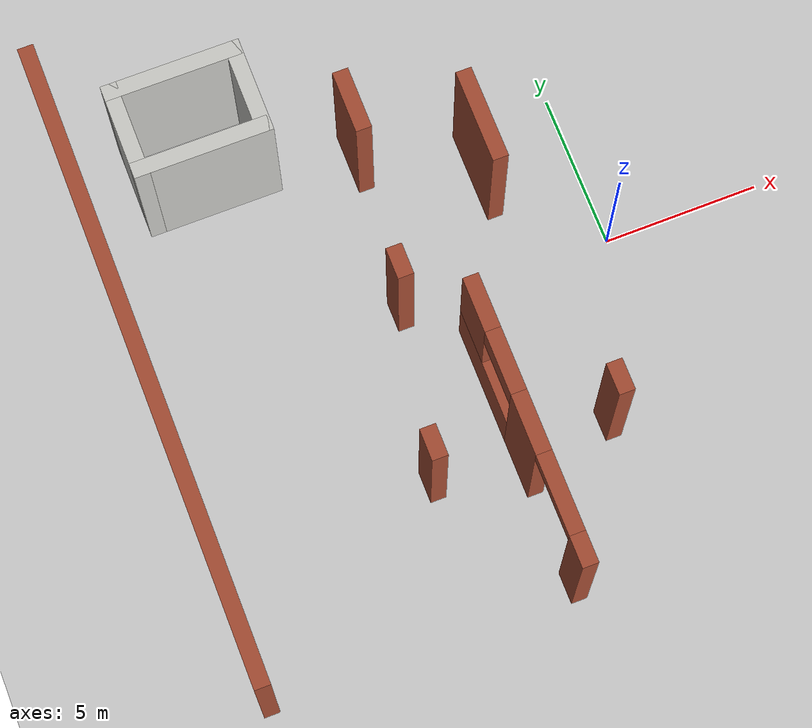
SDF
<sdf version="1.6">
 <world name="default">
  <model name="ground_plane">
   <static>1</static>
   <link name="link">
    <collision name="collision">
     <geometry><plane><normal>0 0 1</normal><size>40 40</size></plane></geometry>
     <surface><friction><ode><mu>100</mu><mu2>50</mu2></ode></friction></surface>
    </collision>
    <visual name="visual">
     <cast_shadows>0</cast_shadows>
     <geometry><plane><normal>0 0 1</normal><size>40 40</size></plane></geometry>
     <material>
      <script><uri>file://media/materials/scripts/gazebo.material</uri><name>Gazebo/Grey</name></script>
     </material>
    </visual>
   </link>
  </model>
  <model name="indoor6">
   <link name="Wall_0">
    <pose>-14.8293 0.123091 0 0 -0 1.5708</pose>
    <visual name="Wall_0_Visual">
     <pose>0 0 2.5 0 -0 0</pose>
     <geometry><box><size>20.5 0.5 5</size></box></geometry>
     <material>
      <script><uri>file://media/materials/scripts/gazebo.material</uri><name>Gazebo/Bricks</name></script>
      <ambient>1 1 1 1</ambient>
      <shader type="pixel"/>
     </material>
     <meta><layer>0</layer></meta>
    </visual>
    <collision name="Wall_0_Collision">
     <pose>0 0 2.5 0 -0 0</pose>
     <geometry><box><size>20.5 0.5 5</size></box></geometry>
     <surface>
      <friction>
       <ode><mu>1</mu><mu2>1</mu2><fdir1>0 0 0</fdir1><slip1>0</slip1><slip2>0</slip2></ode>
       <torsional>
        <coefficient>1</coefficient>
        <patch_radius>0</patch_radius>
        <surface_radius>0</surface_radius>
        <use_patch_radius>1</use_patch_radius>
        <ode><slip>0</slip></ode>
       </torsional>
      </friction>
      <bounce><restitution_coefficient>0</restitution_coefficient><threshold>1e+06</threshold></bounce>
      <contact>
       <collide_without_contact>0</collide_without_contact>
       <collide_without_contact_bitmask>1</collide_without_contact_bitmask>
       <collide_bitmask>1</collide_bitmask>
       <ode>
        <soft_cfm>0</soft_cfm>
        <soft_erp>0.2</soft_erp>
        <kp>1e+13</kp>
        <kd>1</kd>
        <max_vel>0.01</max_vel>
        <min_depth>0</min_depth>
       </ode>
       <bullet>
        <split_impulse>1</split_impulse>
        <split_impulse_penetration_threshold>-0.01</split_impulse_penetration_threshold>
        <soft_cfm>0</soft_cfm>
        <soft_erp>0.2</soft_erp>
        <kp>1e+13</kp>
        <kd>1</kd>
       </bullet>
      </contact>
     </surface>
    </collision>
   </link>
   <link name="Wall_12">
    <pose>-11.01 8.1 0 0 -0 0</pose>
    <visual name="Wall_12_Visual">
     <pose>0 0 2.5 0 -0 0</pose>
     <geometry><box><size>4.35044 0.5 5</size></box></geometry>
     <material>
      <script><uri>file://media/materials/scripts/gazebo.material</uri><name>Gazebo/CeilingTiled</name></script>
      <ambient>1 1 1 1</ambient>
      <shader type="pixel"/>
     </material>
     <meta><layer>0</layer></meta>
    </visual>
    <collision name="Wall_12_Collision">
     <pose>0 0 2.5 0 -0 0</pose>
     <geometry><box><size>4.35044 0.5 5</size></box></geometry>
     <surface>
      <friction>
       <ode><mu>1</mu><mu2>1</mu2><fdir1>0 0 0</fdir1><slip1>0</slip1><slip2>0</slip2></ode>
       <torsional>
        <coefficient>1</coefficient>
        <patch_radius>0</patch_radius>
        <surface_radius>0</surface_radius>
        <use_patch_radius>1</use_patch_radius>
        <ode><slip>0</slip></ode>
       </torsional>
      </friction>
      <bounce><restitution_coefficient>0</restitution_coefficient><threshold>1e+06</threshold></bounce>
      <contact>
       <collide_without_contact>0</collide_without_contact>
       <collide_without_contact_bitmask>1</collide_without_contact_bitmask>
       <collide_bitmask>1</collide_bitmask>
       <ode>
        <soft_cfm>0</soft_cfm>
        <soft_erp>0.2</soft_erp>
        <kp>1e+13</kp>
        <kd>1</kd>
        <max_vel>0.01</max_vel>
        <min_depth>0</min_depth>
       </ode>
       <bullet>
        <split_impulse>1</split_impulse>
        <split_impulse_penetration_threshold>-0.01</split_impulse_penetration_threshold>
        <soft_cfm>0</soft_cfm>
        <soft_erp>0.2</soft_erp>
        <kp>1e+13</kp>
        <kd>1</kd>
       </bullet>
      </contact>
     </surface>
    </collision>
   </link>
   <link name="Wall_13">
    <pose>-9.085 6.8 0 0 0 -1.5708</pose>
    <visual name="Wall_13_Visual">
     <pose>0 0 2.5 0 -0 0</pose>
     <geometry><box><size>3.1 0.5 5</size></box></geometry>
     <material>
      <script><uri>file://media/materials/scripts/gazebo.material</uri><name>Gazebo/CeilingTiled</name></script>
      <ambient>1 1 1 1</ambient>
      <shader type="pixel"/>
     </material>
     <meta><layer>0</layer></meta>
    </visual>
    <collision name="Wall_13_Collision">
     <pose>0 0 2.5 0 -0 0</pose>
     <geometry><box><size>3.1 0.5 5</size></box></geometry>
     <surface>
      <friction>
       <ode><mu>1</mu><mu2>1</mu2><fdir1>0 0 0</fdir1><slip1>0</slip1><slip2>0</slip2></ode>
       <torsional>
        <coefficient>1</coefficient>
        <patch_radius>0</patch_radius>
        <surface_radius>0</surface_radius>
        <use_patch_radius>1</use_patch_radius>
        <ode><slip>0</slip></ode>
       </torsional>
      </friction>
      <bounce><restitution_coefficient>0</restitution_coefficient><threshold>1e+06</threshold></bounce>
      <contact>
       <collide_without_contact>0</collide_without_contact>
       <collide_without_contact_bitmask>1</collide_without_contact_bitmask>
       <collide_bitmask>1</collide_bitmask>
       <ode>
        <soft_cfm>0</soft_cfm>
        <soft_erp>0.2</soft_erp>
        <kp>1e+13</kp>
        <kd>1</kd>
        <max_vel>0.01</max_vel>
        <min_depth>0</min_depth>
       </ode>
       <bullet>
        <split_impulse>1</split_impulse>
        <split_impulse_penetration_threshold>-0.01</split_impulse_penetration_threshold>
        <soft_cfm>0</soft_cfm>
        <soft_erp>0.2</soft_erp>
        <kp>1e+13</kp>
        <kd>1</kd>
       </bullet>
      </contact>
     </surface>
    </collision>
   </link>
   <link name="Wall_14">
    <pose>-11.01 5.5 0 0 -0 3.14159</pose>
    <visual name="Wall_14_Visual">
     <pose>0 0 2.5 0 -0 0</pose>
     <geometry><box><size>4.35 0.5 5</size></box></geometry>
     <material>
      <script><uri>file://media/materials/scripts/gazebo.material</uri><name>Gazebo/CeilingTiled</name></script>
      <ambient>1 1 1 1</ambient>
      <shader type="pixel"/>
     </material>
     <meta><layer>0</layer></meta>
    </visual>
    <collision name="Wall_14_Collision">
     <pose>0 0 2.5 0 -0 0</pose>
     <geometry><box><size>4.35 0.5 5</size></box></geometry>
     <surface>
      <friction>
       <ode><mu>1</mu><mu2>1</mu2><fdir1>0 0 0</fdir1><slip1>0</slip1><slip2>0</slip2></ode>
       <torsional>
        <coefficient>1</coefficient>
        <patch_radius>0</patch_radius>
        <surface_radius>0</surface_radius>
        <use_patch_radius>1</use_patch_radius>
        <ode><slip>0</slip></ode>
       </torsional>
      </friction>
      <bounce><restitution_coefficient>0</restitution_coefficient><threshold>1e+06</threshold></bounce>
      <contact>
       <collide_without_contact>0</collide_without_contact>
       <collide_without_contact_bitmask>1</collide_without_contact_bitmask>
       <collide_bitmask>1</collide_bitmask>
       <ode>
        <soft_cfm>0</soft_cfm>
        <soft_erp>0.2</soft_erp>
        <kp>1e+13</kp>
        <kd>1</kd>
        <max_vel>0.01</max_vel>
        <min_depth>0</min_depth>
       </ode>
       <bullet>
        <split_impulse>1</split_impulse>
        <split_impulse_penetration_threshold>-0.01</split_impulse_penetration_threshold>
        <soft_cfm>0</soft_cfm>
        <soft_erp>0.2</soft_erp>
        <kp>1e+13</kp>
        <kd>1</kd>
       </bullet>
      </contact>
     </surface>
    </collision>
   </link>
   <link name="Wall_15">
    <pose>-12.935 6.8 0 0 -0 1.5708</pose>
    <visual name="Wall_15_Visual">
     <pose>0 0 2.5 0 -0 0</pose>
     <geometry><box><size>3.1 0.5 5</size></box></geometry>
     <material>
      <script><uri>file://media/materials/scripts/gazebo.material</uri><name>Gazebo/CeilingTiled</name></script>
      <ambient>1 1 1 1</ambient>
      <shader type="pixel"/>
     </material>
     <meta><layer>0</layer></meta>
    </visual>
    <collision name="Wall_15_Collision">
     <pose>0 0 2.5 0 -0 0</pose>
     <geometry><box><size>3.1 0.5 5</size></box></geometry>
     <surface>
      <friction>
       <ode><mu>1</mu><mu2>1</mu2><fdir1>0 0 0</fdir1><slip1>0</slip1><slip2>0</slip2></ode>
       <torsional>
        <coefficient>1</coefficient>
        <patch_radius>0</patch_radius>
        <surface_radius>0</surface_radius>
        <use_patch_radius>1</use_patch_radius>
        <ode><slip>0</slip></ode>
       </torsional>
      </friction>
      <bounce><restitution_coefficient>0</restitution_coefficient><threshold>1e+06</threshold></bounce>
      <contact>
       <collide_without_contact>0</collide_without_contact>
       <collide_without_contact_bitmask>1</collide_without_contact_bitmask>
       <collide_bitmask>1</collide_bitmask>
       <ode>
        <soft_cfm>0</soft_cfm>
        <soft_erp>0.2</soft_erp>
        <kp>1e+13</kp>
        <kd>1</kd>
        <max_vel>0.01</max_vel>
        <min_depth>0</min_depth>
       </ode>
       <bullet>
        <split_impulse>1</split_impulse>
        <split_impulse_penetration_threshold>-0.01</split_impulse_penetration_threshold>
        <soft_cfm>0</soft_cfm>
        <soft_erp>0.2</soft_erp>
        <kp>1e+13</kp>
        <kd>1</kd>
       </bullet>
      </contact>
     </surface>
    </collision>
   </link>
   <link name="Wall_17">
    <pose>-5.12466 -7.3138 0 0 -0 1.5708</pose>
    <inertial>
     <mass>1</mass>
     <inertia><ixx>1</ixx><ixy>0</ixy><ixz>0</ixz><iyy>1</iyy><iyz>0</iyz><izz>1</izz></inertia>
    </inertial>
    <visual name="Wall_17_Visual_3">
     <pose>5.375 0 3.5 0 -0 0</pose>
     <geometry><box><size>1.75 0.5 3</size></box></geometry>
     <material>
      <script><uri>file://media/materials/scripts/gazebo.material</uri><name>Gazebo/Bricks</name></script>
      <ambient>1 1 1 1</ambient>
      <shader type="pixel"><normal_map>__default__</normal_map></shader>
      <diffuse>1 1 1 1</diffuse>
      <specular>0.2 0.2 0.2 1</specular>
      <emissive>0 0 0 1</emissive>
     </material>
     <meta><layer>0</layer></meta>
    </visual>
    <visual name="Wall_17_Visual_4">
     <pose>3.5 0 4.5 0 -0 0</pose>
     <geometry><box><size>2 0.5 1</size></box></geometry>
     <material>
      <script><uri>file://media/materials/scripts/gazebo.material</uri><name>Gazebo/Bricks</name></script>
      <ambient>1 1 1 1</ambient>
      <shader type="pixel"><normal_map>__default__</normal_map></shader>
      <diffuse>1 1 1 1</diffuse>
      <specular>0.2 0.2 0.2 1</specular>
      <emissive>0 0 0 1</emissive>
     </material>
     <meta><layer>0</layer></meta>
    </visual>
    <visual name="Wall_17_Visual_2">
     <pose>4.375 0 1 0 -0 0</pose>
     <geometry><box><size>3.75 0.5 2</size></box></geometry>
     <material>
      <script><uri>file://media/materials/scripts/gazebo.material</uri><name>Gazebo/Bricks</name></script>
      <ambient>1 1 1 1</ambient>
      <shader type="pixel"><normal_map>__default__</normal_map></shader>
      <diffuse>1 1 1 1</diffuse>
      <specular>0.2 0.2 0.2 1</specular>
      <emissive>0 0 0 1</emissive>
     </material>
     <meta><layer>0</layer></meta>
    </visual>
    <visual name="Wall_17_Visual_0">
     <pose>-2.4 0 2.5 0 -0 0</pose>
     <geometry><box><size>1 0.5 5</size></box></geometry>
     <material>
      <script><uri>file://media/materials/scripts/gazebo.material</uri><name>Gazebo/Bricks</name></script>
      <ambient>1 1 1 1</ambient>
      <shader type="pixel"><normal_map>__default__</normal_map></shader>
      <diffuse>1 1 1 1</diffuse>
      <specular>0.2 0.2 0.2 1</specular>
      <emissive>0 0 0 1</emissive>
     </material>
     <meta><layer>0</layer></meta>
    </visual>
    <visual name="Wall_17_Visual_1">
     <pose>1.54487 0 2.5 0 -0 0</pose>
     <geometry><box><size>1.91027 0.5 5</size></box></geometry>
     <material>
      <script><uri>file://media/materials/scripts/gazebo.material</uri><name>Gazebo/Bricks</name></script>
      <ambient>1 1 1 1</ambient>
      <shader type="pixel"><normal_map>__default__</normal_map></shader>
      <diffuse>1 1 1 1</diffuse>
      <specular>0.2 0.2 0.2 1</specular>
      <emissive>0 0 0 1</emissive>
     </material>
     <meta><layer>0</layer></meta>
    </visual>
    <visual name="Wall_17_Visual_5">
     <pose>-0.660267 0 4.75 0 -0 0</pose>
     <geometry><box><size>2.5 0.5 0.5</size></box></geometry>
     <material>
      <script><uri>file://media/materials/scripts/gazebo.material</uri><name>Gazebo/Bricks</name></script>
      <ambient>1 1 1 1</ambient>
      <shader type="pixel"><normal_map>__default__</normal_map></shader>
      <diffuse>1 1 1 1</diffuse>
      <specular>0.2 0.2 0.2 1</specular>
      <emissive>0 0 0 1</emissive>
     </material>
     <meta><layer>0</layer></meta>
    </visual>
    <collision name="Wall_17_Collision_2">
     <pose>4.375 0 1 0 -0 0</pose>
     <geometry><box><size>3.75 0.5 2</size></box></geometry>
     <surface>
      <friction>
       <ode><mu>1</mu><mu2>1</mu2><fdir1>0 0 0</fdir1><slip1>0</slip1><slip2>0</slip2></ode>
       <torsional>
        <coefficient>1</coefficient>
        <patch_radius>0</patch_radius>
        <surface_radius>0</surface_radius>
        <use_patch_radius>1</use_patch_radius>
        <ode><slip>0</slip></ode>
       </torsional>
      </friction>
      <bounce><restitution_coefficient>0</restitution_coefficient><threshold>1e+06</threshold></bounce>
      <contact>
       <collide_without_contact>0</collide_without_contact>
       <collide_without_contact_bitmask>1</collide_without_contact_bitmask>
       <collide_bitmask>1</collide_bitmask>
       <ode>
        <soft_cfm>0</soft_cfm>
        <soft_erp>0.2</soft_erp>
        <kp>1e+13</kp>
        <kd>1</kd>
        <max_vel>0.01</max_vel>
        <min_depth>0</min_depth>
       </ode>
       <bullet>
        <split_impulse>1</split_impulse>
        <split_impulse_penetration_threshold>-0.01</split_impulse_penetration_threshold>
        <soft_cfm>0</soft_cfm>
        <soft_erp>0.2</soft_erp>
        <kp>1e+13</kp>
        <kd>1</kd>
       </bullet>
      </contact>
     </surface>
    </collision>
    <collision name="Wall_17_Collision_4">
     <pose>3.5 0 4.5 0 -0 0</pose>
     <geometry><box><size>2 0.5 1</size></box></geometry>
     <surface>
      <friction>
       <ode><mu>1</mu><mu2>1</mu2><fdir1>0 0 0</fdir1><slip1>0</slip1><slip2>0</slip2></ode>
       <torsional>
        <coefficient>1</coefficient>
        <patch_radius>0</patch_radius>
        <surface_radius>0</surface_radius>
        <use_patch_radius>1</use_patch_radius>
        <ode><slip>0</slip></ode>
       </torsional>
      </friction>
      <bounce><restitution_coefficient>0</restitution_coefficient><threshold>1e+06</threshold></bounce>
      <contact>
       <collide_without_contact>0</collide_without_contact>
       <collide_without_contact_bitmask>1</collide_without_contact_bitmask>
       <collide_bitmask>1</collide_bitmask>
       <ode>
        <soft_cfm>0</soft_cfm>
        <soft_erp>0.2</soft_erp>
        <kp>1e+13</kp>
        <kd>1</kd>
        <max_vel>0.01</max_vel>
        <min_depth>0</min_depth>
       </ode>
       <bullet>
        <split_impulse>1</split_impulse>
        <split_impulse_penetration_threshold>-0.01</split_impulse_penetration_threshold>
        <soft_cfm>0</soft_cfm>
        <soft_erp>0.2</soft_erp>
        <kp>1e+13</kp>
        <kd>1</kd>
       </bullet>
      </contact>
     </surface>
    </collision>
    <collision name="Wall_17_Collision_1">
     <pose>1.54487 0 2.5 0 -0 0</pose>
     <geometry><box><size>1.91027 0.5 5</size></box></geometry>
     <surface>
      <friction>
       <ode><mu>1</mu><mu2>1</mu2><fdir1>0 0 0</fdir1><slip1>0</slip1><slip2>0</slip2></ode>
       <torsional>
        <coefficient>1</coefficient>
        <patch_radius>0</patch_radius>
        <surface_radius>0</surface_radius>
        <use_patch_radius>1</use_patch_radius>
        <ode><slip>0</slip></ode>
       </torsional>
      </friction>
      <bounce><restitution_coefficient>0</restitution_coefficient><threshold>1e+06</threshold></bounce>
      <contact>
       <collide_without_contact>0</collide_without_contact>
       <collide_without_contact_bitmask>1</collide_without_contact_bitmask>
       <collide_bitmask>1</collide_bitmask>
       <ode>
        <soft_cfm>0</soft_cfm>
        <soft_erp>0.2</soft_erp>
        <kp>1e+13</kp>
        <kd>1</kd>
        <max_vel>0.01</max_vel>
        <min_depth>0</min_depth>
       </ode>
       <bullet>
        <split_impulse>1</split_impulse>
        <split_impulse_penetration_threshold>-0.01</split_impulse_penetration_threshold>
        <soft_cfm>0</soft_cfm>
        <soft_erp>0.2</soft_erp>
        <kp>1e+13</kp>
        <kd>1</kd>
       </bullet>
      </contact>
     </surface>
    </collision>
    <collision name="Wall_17_Collision_5">
     <pose>-0.660267 0 4.75 0 -0 0</pose>
     <geometry><box><size>2.5 0.5 0.5</size></box></geometry>
     <surface>
      <friction>
       <ode><mu>1</mu><mu2>1</mu2><fdir1>0 0 0</fdir1><slip1>0</slip1><slip2>0</slip2></ode>
       <torsional>
        <coefficient>1</coefficient>
        <patch_radius>0</patch_radius>
        <surface_radius>0</surface_radius>
        <use_patch_radius>1</use_patch_radius>
        <ode><slip>0</slip></ode>
       </torsional>
      </friction>
      <bounce><restitution_coefficient>0</restitution_coefficient><threshold>1e+06</threshold></bounce>
      <contact>
       <collide_without_contact>0</collide_without_contact>
       <collide_without_contact_bitmask>1</collide_without_contact_bitmask>
       <collide_bitmask>1</collide_bitmask>
       <ode>
        <soft_cfm>0</soft_cfm>
        <soft_erp>0.2</soft_erp>
        <kp>1e+13</kp>
        <kd>1</kd>
        <max_vel>0.01</max_vel>
        <min_depth>0</min_depth>
       </ode>
       <bullet>
        <split_impulse>1</split_impulse>
        <split_impulse_penetration_threshold>-0.01</split_impulse_penetration_threshold>
        <soft_cfm>0</soft_cfm>
        <soft_erp>0.2</soft_erp>
        <kp>1e+13</kp>
        <kd>1</kd>
       </bullet>
      </contact>
     </surface>
    </collision>
    <collision name="Wall_17_Collision_3">
     <pose>5.375 0 3.5 0 -0 0</pose>
     <geometry><box><size>1.75 0.5 3</size></box></geometry>
     <surface>
      <friction>
       <ode><mu>1</mu><mu2>1</mu2><fdir1>0 0 0</fdir1><slip1>0</slip1><slip2>0</slip2></ode>
       <torsional>
        <coefficient>1</coefficient>
        <patch_radius>0</patch_radius>
        <surface_radius>0</surface_radius>
        <use_patch_radius>1</use_patch_radius>
        <ode><slip>0</slip></ode>
       </torsional>
      </friction>
      <bounce><restitution_coefficient>0</restitution_coefficient><threshold>1e+06</threshold></bounce>
      <contact>
       <collide_without_contact>0</collide_without_contact>
       <collide_without_contact_bitmask>1</collide_without_contact_bitmask>
       <collide_bitmask>1</collide_bitmask>
       <ode>
        <soft_cfm>0</soft_cfm>
        <soft_erp>0.2</soft_erp>
        <kp>1e+13</kp>
        <kd>1</kd>
        <max_vel>0.01</max_vel>
        <min_depth>0</min_depth>
       </ode>
       <bullet>
        <split_impulse>1</split_impulse>
        <split_impulse_penetration_threshold>-0.01</split_impulse_penetration_threshold>
        <soft_cfm>0</soft_cfm>
        <soft_erp>0.2</soft_erp>
        <kp>1e+13</kp>
        <kd>1</kd>
       </bullet>
      </contact>
     </surface>
    </collision>
    <collision name="Wall_17_Collision_0">
     <pose>-2.4 0 2.5 0 -0 0</pose>
     <geometry><box><size>1 0.5 5</size></box></geometry>
     <surface>
      <friction>
       <ode><mu>1</mu><mu2>1</mu2><fdir1>0 0 0</fdir1><slip1>0</slip1><slip2>0</slip2></ode>
       <torsional>
        <coefficient>1</coefficient>
        <patch_radius>0</patch_radius>
        <surface_radius>0</surface_radius>
        <use_patch_radius>1</use_patch_radius>
        <ode><slip>0</slip></ode>
       </torsional>
      </friction>
      <bounce><restitution_coefficient>0</restitution_coefficient><threshold>1e+06</threshold></bounce>
      <contact>
       <collide_without_contact>0</collide_without_contact>
       <collide_without_contact_bitmask>1</collide_without_contact_bitmask>
       <collide_bitmask>1</collide_bitmask>
       <ode>
        <soft_cfm>0</soft_cfm>
        <soft_erp>0.2</soft_erp>
        <kp>1e+13</kp>
        <kd>1</kd>
        <max_vel>0.01</max_vel>
        <min_depth>0</min_depth>
       </ode>
       <bullet>
        <split_impulse>1</split_impulse>
        <split_impulse_penetration_threshold>-0.01</split_impulse_penetration_threshold>
        <soft_cfm>0</soft_cfm>
        <soft_erp>0.2</soft_erp>
        <kp>1e+13</kp>
        <kd>1</kd>
       </bullet>
      </contact>
     </surface>
    </collision>
   </link>
   <link name="Wall_7_clone_1">
    <pose>-6.37499 5.29119 0 0 -0 1.5708</pose>
    <inertial>
     <mass>1</mass>
     <inertia><ixx>1</ixx><ixy>0</ixy><ixz>0</ixz><iyy>1</iyy><iyz>0</iyz><izz>1</izz></inertia>
    </inertial>
    <visual name="Wall_7_Visual">
     <pose>0 0 2.5 0 -0 0</pose>
     <geometry><box><size>2 0.5 5</size></box></geometry>
     <material>
      <script><uri>file://media/materials/scripts/gazebo.material</uri><name>Gazebo/Bricks</name></script>
      <ambient>1 1 1 1</ambient>
      <shader type="pixel"><normal_map>__default__</normal_map></shader>
      <diffuse>1 1 1 1</diffuse>
      <specular>0.2 0.2 0.2 1</specular>
      <emissive>0 0 0 1</emissive>
     </material>
     <meta><layer>0</layer></meta>
    </visual>
    <collision name="Wall_7_Collision">
     <pose>0 0 2.5 0 -0 0</pose>
     <geometry><box><size>2 0.5 5</size></box></geometry>
     <surface>
      <friction>
       <ode><mu>1</mu><mu2>1</mu2><fdir1>0 0 0</fdir1><slip1>0</slip1><slip2>0</slip2></ode>
       <torsional>
        <coefficient>1</coefficient>
        <patch_radius>0</patch_radius>
        <surface_radius>0</surface_radius>
        <use_patch_radius>1</use_patch_radius>
        <ode><slip>0</slip></ode>
       </torsional>
      </friction>
      <bounce><restitution_coefficient>0</restitution_coefficient><threshold>1e+06</threshold></bounce>
      <contact>
       <collide_without_contact>0</collide_without_contact>
       <collide_without_contact_bitmask>1</collide_without_contact_bitmask>
       <collide_bitmask>1</collide_bitmask>
       <ode>
        <soft_cfm>0</soft_cfm>
        <soft_erp>0.2</soft_erp>
        <kp>1e+13</kp>
        <kd>1</kd>
        <max_vel>0.01</max_vel>
        <min_depth>0</min_depth>
       </ode>
       <bullet>
        <split_impulse>1</split_impulse>
        <split_impulse_penetration_threshold>-0.01</split_impulse_penetration_threshold>
        <soft_cfm>0</soft_cfm>
        <soft_erp>0.2</soft_erp>
        <kp>1e+13</kp>
        <kd>1</kd>
       </bullet>
      </contact>
     </surface>
    </collision>
   </link>
   <link name="Wall_9">
    <pose>-6.86494 0.086927 0 0 -0 1.5708</pose>
    <inertial>
     <mass>1</mass>
     <inertia><ixx>1</ixx><ixy>0</ixy><ixz>0</ixz><iyy>1</iyy><iyz>0</iyz><izz>1</izz></inertia>
    </inertial>
    <visual name="Wall_9_Visual">
     <pose>0 0 2.5 0 -0 0</pose>
     <geometry><box><size>1 0.5 5</size></box></geometry>
     <material>
      <script><uri>file://media/materials/scripts/gazebo.material</uri><name>Gazebo/Bricks</name></script>
      <ambient>1 1 1 1</ambient>
      <shader type="pixel"><normal_map>__default__</normal_map></shader>
      <diffuse>1 1 1 1</diffuse>
      <specular>0.2 0.2 0.2 1</specular>
      <emissive>0 0 0 1</emissive>
     </material>
     <meta><layer>0</layer></meta>
    </visual>
    <collision name="Wall_9_Collision">
     <pose>0 0 2.5 0 -0 0</pose>
     <geometry><box><size>1 0.5 5</size></box></geometry>
     <surface>
      <friction>
       <ode><mu>1</mu><mu2>1</mu2><fdir1>0 0 0</fdir1><slip1>0</slip1><slip2>0</slip2></ode>
       <torsional>
        <coefficient>1</coefficient>
        <patch_radius>0</patch_radius>
        <surface_radius>0</surface_radius>
        <use_patch_radius>1</use_patch_radius>
        <ode><slip>0</slip></ode>
       </torsional>
      </friction>
      <bounce><restitution_coefficient>0</restitution_coefficient><threshold>1e+06</threshold></bounce>
      <contact>
       <collide_without_contact>0</collide_without_contact>
       <collide_without_contact_bitmask>1</collide_without_contact_bitmask>
       <collide_bitmask>1</collide_bitmask>
       <ode>
        <soft_cfm>0</soft_cfm>
        <soft_erp>0.2</soft_erp>
        <kp>1e+13</kp>
        <kd>1</kd>
        <max_vel>0.01</max_vel>
        <min_depth>0</min_depth>
       </ode>
       <bullet>
        <split_impulse>1</split_impulse>
        <split_impulse_penetration_threshold>-0.01</split_impulse_penetration_threshold>
        <soft_cfm>0</soft_cfm>
        <soft_erp>0.2</soft_erp>
        <kp>1e+13</kp>
        <kd>1</kd>
       </bullet>
      </contact>
     </surface>
    </collision>
   </link>
   <link name="Wall_9_clone">
    <pose>-2.95726 3.49654 0 0 -0 1.5708</pose>
    <inertial>
     <mass>1</mass>
     <inertia><ixx>1</ixx><ixy>0</ixy><ixz>0</ixz><iyy>1</iyy><iyz>0</iyz><izz>1</izz></inertia>
    </inertial>
    <visual name="Wall_9_Visual">
     <pose>0 0 2.5 0 -0 0</pose>
     <geometry><box><size>3 0.5 5</size></box></geometry>
     <material>
      <script><uri>file://media/materials/scripts/gazebo.material</uri><name>Gazebo/Bricks</name></script>
      <ambient>1 1 1 1</ambient>
      <shader type="pixel"><normal_map>__default__</normal_map></shader>
      <diffuse>1 1 1 1</diffuse>
      <specular>0.2 0.2 0.2 1</specular>
      <emissive>0 0 0 1</emissive>
     </material>
     <meta><layer>0</layer></meta>
    </visual>
    <collision name="Wall_9_Collision">
     <pose>0 0 2.5 0 -0 0</pose>
     <geometry><box><size>3 0.5 5</size></box></geometry>
     <surface>
      <friction>
       <ode><mu>1</mu><mu2>1</mu2><fdir1>0 0 0</fdir1><slip1>0</slip1><slip2>0</slip2></ode>
       <torsional>
        <coefficient>1</coefficient>
        <patch_radius>0</patch_radius>
        <surface_radius>0</surface_radius>
        <use_patch_radius>1</use_patch_radius>
        <ode><slip>0</slip></ode>
       </torsional>
      </friction>
      <bounce><restitution_coefficient>0</restitution_coefficient><threshold>1e+06</threshold></bounce>
      <contact>
       <collide_without_contact>0</collide_without_contact>
       <collide_without_contact_bitmask>1</collide_without_contact_bitmask>
       <collide_bitmask>1</collide_bitmask>
       <ode>
        <soft_cfm>0</soft_cfm>
        <soft_erp>0.2</soft_erp>
        <kp>1e+13</kp>
        <kd>1</kd>
        <max_vel>0.01</max_vel>
        <min_depth>0</min_depth>
       </ode>
       <bullet>
        <split_impulse>1</split_impulse>
        <split_impulse_penetration_threshold>-0.01</split_impulse_penetration_threshold>
        <soft_cfm>0</soft_cfm>
        <soft_erp>0.2</soft_erp>
        <kp>1e+13</kp>
        <kd>1</kd>
       </bullet>
      </contact>
     </surface>
    </collision>
   </link>
   <link name="Wall_9_clone_1">
    <pose>-2.2418 -5.43659 0 0 -0 1.5708</pose>
    <inertial>
     <mass>1</mass>
     <inertia><ixx>1</ixx><ixy>0</ixy><ixz>0</ixz><iyy>1</iyy><iyz>0</iyz><izz>1</izz></inertia>
    </inertial>
    <visual name="Wall_9_Visual">
     <pose>0 0 2.5 0 -0 0</pose>
     <geometry><box><size>1 0.5 5</size></box></geometry>
     <material>
      <script><uri>file://media/materials/scripts/gazebo.material</uri><name>Gazebo/Bricks</name></script>
      <ambient>1 1 1 1</ambient>
      <shader type="pixel"><normal_map>__default__</normal_map></shader>
      <diffuse>1 1 1 1</diffuse>
      <specular>0.2 0.2 0.2 1</specular>
      <emissive>0 0 0 1</emissive>
     </material>
     <meta><layer>0</layer></meta>
    </visual>
    <collision name="Wall_9_Collision">
     <pose>0 0 2.5 0 -0 0</pose>
     <geometry><box><size>1 0.5 5</size></box></geometry>
     <surface>
      <friction>
       <ode><mu>1</mu><mu2>1</mu2><fdir1>0 0 0</fdir1><slip1>0</slip1><slip2>0</slip2></ode>
       <torsional>
        <coefficient>1</coefficient>
        <patch_radius>0</patch_radius>
        <surface_radius>0</surface_radius>
        <use_patch_radius>1</use_patch_radius>
        <ode><slip>0</slip></ode>
       </torsional>
      </friction>
      <bounce><restitution_coefficient>0</restitution_coefficient><threshold>1e+06</threshold></bounce>
      <contact>
       <collide_without_contact>0</collide_without_contact>
       <collide_without_contact_bitmask>1</collide_without_contact_bitmask>
       <collide_bitmask>1</collide_bitmask>
       <ode>
        <soft_cfm>0</soft_cfm>
        <soft_erp>0.2</soft_erp>
        <kp>1e+13</kp>
        <kd>1</kd>
        <max_vel>0.01</max_vel>
        <min_depth>0</min_depth>
       </ode>
       <bullet>
        <split_impulse>1</split_impulse>
        <split_impulse_penetration_threshold>-0.01</split_impulse_penetration_threshold>
        <soft_cfm>0</soft_cfm>
        <soft_erp>0.2</soft_erp>
        <kp>1e+13</kp>
        <kd>1</kd>
       </bullet>
      </contact>
     </surface>
    </collision>
   </link>
   <link name="Wall_9_clone_1_clone">
    <pose>-7.91325 -5.32268 0 0 -0 1.5708</pose>
    <inertial>
     <mass>1</mass>
     <inertia><ixx>1</ixx><ixy>0</ixy><ixz>0</ixz><iyy>1</iyy><iyz>0</iyz><izz>1</izz></inertia>
    </inertial>
    <visual name="Wall_9_Visual">
     <pose>0 0 2.5 0 -0 0</pose>
     <geometry><box><size>1 0.5 5</size></box></geometry>
     <material>
      <script><uri>file://media/materials/scripts/gazebo.material</uri><name>Gazebo/Bricks</name></script>
      <ambient>1 1 1 1</ambient>
      <shader type="pixel"><normal_map>__default__</normal_map></shader>
      <diffuse>1 1 1 1</diffuse>
      <specular>0.2 0.2 0.2 1</specular>
      <emissive>0 0 0 1</emissive>
     </material>
     <meta><layer>0</layer></meta>
    </visual>
    <collision name="Wall_9_Collision">
     <pose>0 0 2.5 0 -0 0</pose>
     <geometry><box><size>1 0.5 5</size></box></geometry>
     <surface>
      <friction>
       <ode><mu>1</mu><mu2>1</mu2><fdir1>0 0 0</fdir1><slip1>0</slip1><slip2>0</slip2></ode>
       <torsional>
        <coefficient>1</coefficient>
        <patch_radius>0</patch_radius>
        <surface_radius>0</surface_radius>
        <use_patch_radius>1</use_patch_radius>
        <ode><slip>0</slip></ode>
       </torsional>
      </friction>
      <bounce><restitution_coefficient>0</restitution_coefficient><threshold>1e+06</threshold></bounce>
      <contact>
       <collide_without_contact>0</collide_without_contact>
       <collide_without_contact_bitmask>1</collide_without_contact_bitmask>
       <collide_bitmask>1</collide_bitmask>
       <ode>
        <soft_cfm>0</soft_cfm>
        <soft_erp>0.2</soft_erp>
        <kp>1e+13</kp>
        <kd>1</kd>
        <max_vel>0.01</max_vel>
        <min_depth>0</min_depth>
       </ode>
       <bullet>
        <split_impulse>1</split_impulse>
        <split_impulse_penetration_threshold>-0.01</split_impulse_penetration_threshold>
        <soft_cfm>0</soft_cfm>
        <soft_erp>0.2</soft_erp>
        <kp>1e+13</kp>
        <kd>1</kd>
       </bullet>
      </contact>
     </surface>
    </collision>
   </link>
   <static>1</static>
  </model>
 </world>
</sdf>
